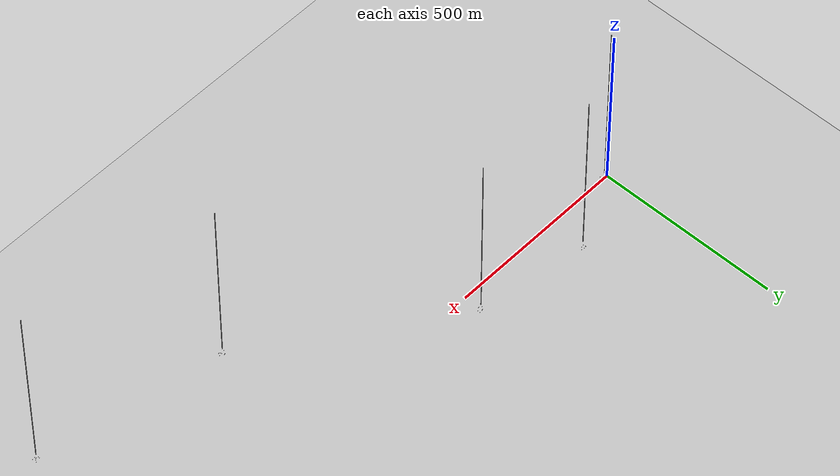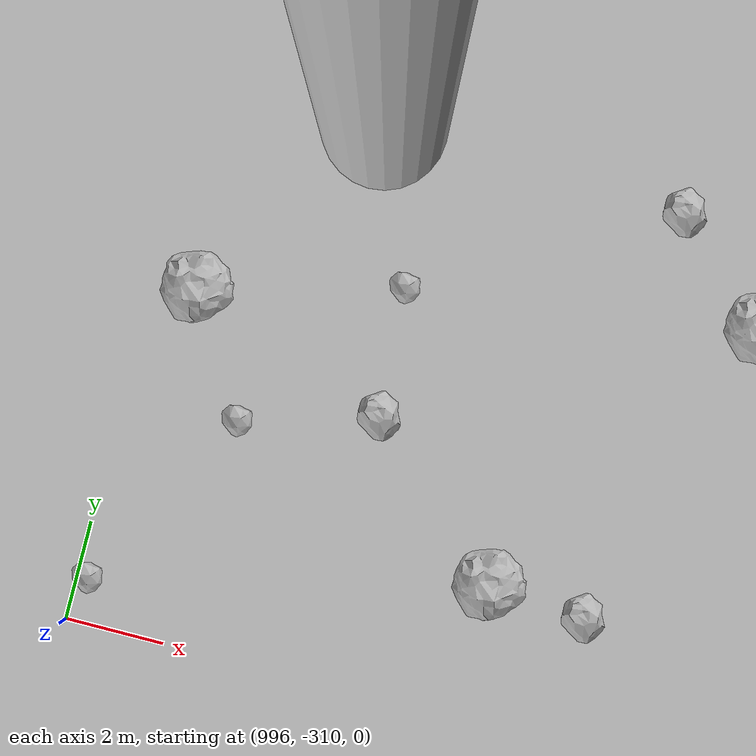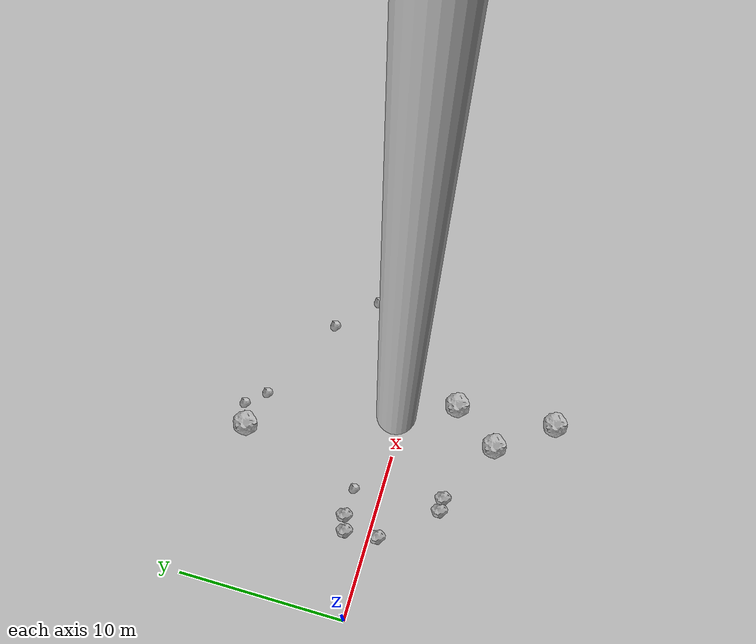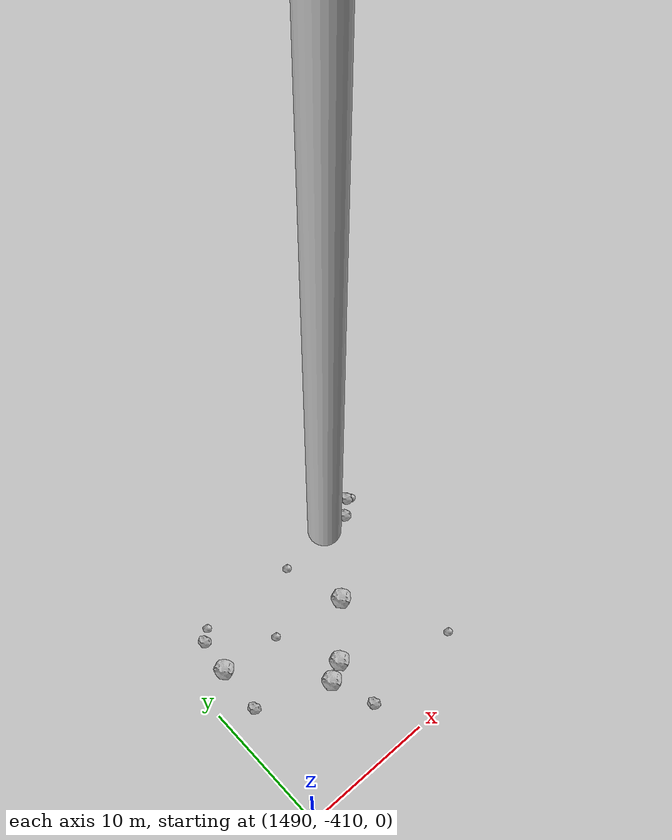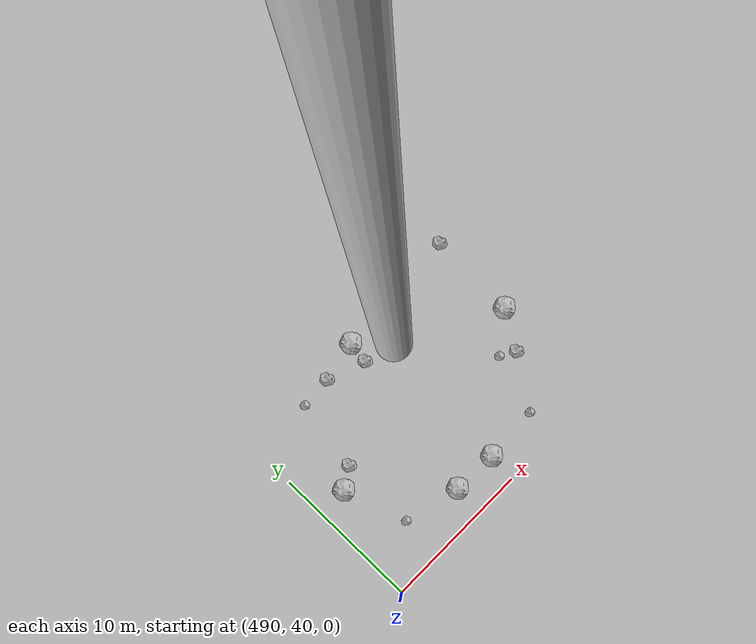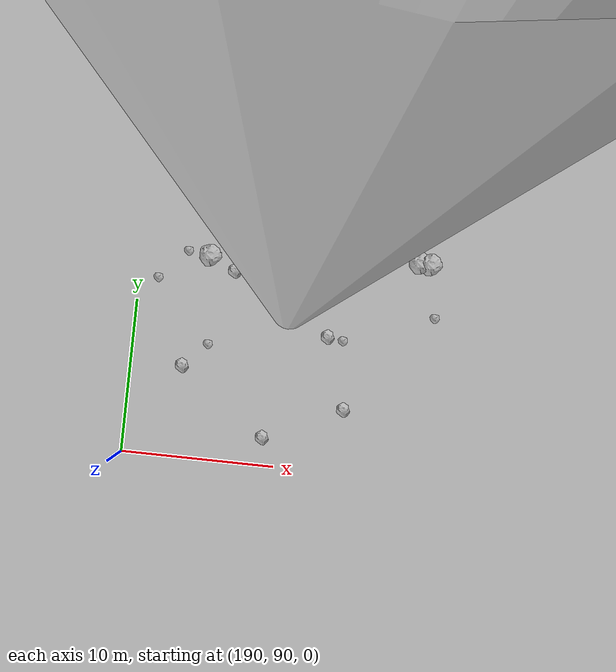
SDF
<?xml version="1.0" ?>
<sdf version="1.6">
  <world name="default">

    <include>
      <uri>model://custom_ground</uri>
    </include>

    <include>
      <uri>model://sun</uri>
    </include>

    <spherical_coordinates>
      <surface_model>EARTH_WGS84</surface_model>
      <latitude_deg>38.161479</latitude_deg>
      <longitude_deg>-122.454630</longitude_deg>
      <elevation>488.0</elevation>
      <heading_deg>90</heading_deg>
    </spherical_coordinates>

    <model name="rock1_0_0">
      <include>
        <uri>model://rock1</uri>
        <pose>14.522142649900724 -8.64368959535694 0.5 0 0 0</pose>
      </include>
    </model>
    <model name="rock1_0_1">
      <include>
        <uri>model://rock1</uri>
        <pose>12.299010159048008 -5.558889774996372 0.5 0 0 0</pose>
      </include>
    </model>
    <model name="rock1_0_2">
      <include>
        <uri>model://rock1</uri>
        <pose>13.668945424347346 0.448006130069194 0.5 0 0 0</pose>
      </include>
    </model>
    <model name="rock1_0_3">
      <include>
        <uri>model://rock1</uri>
        <pose>14.0152120559019 -2.8188596205289818 0.5 0 0 0</pose>
      </include>
    </model>
    <model name="rock1_0_4">
      <include>
        <uri>model://rock1</uri>
        <pose>9.471186729009224 8.829627205848524 0.5 0 0 0</pose>
      </include>
    </model>
    <model name="rock2_0_0">
      <include>
        <uri>model://rock2</uri>
        <pose>7.749408486368427 -3.5255544806947388 0.3 0 0 0</pose>
      </include>
    </model>
    <model name="rock2_0_1">
      <include>
        <uri>model://rock2</uri>
        <pose>5.239809384010989 -0.46641202970233486 0.3 0 0 0</pose>
      </include>
    </model>
    <model name="rock2_0_2">
      <include>
        <uri>model://rock2</uri>
        <pose>5.055476160119261 1.467382575450042 0.3 0 0 0</pose>
      </include>
    </model>
    <model name="rock2_0_3">
      <include>
        <uri>model://rock2</uri>
        <pose>5.934402497399686 1.7352598158985177 0.3 0 0 0</pose>
      </include>
    </model>
    <model name="rock2_0_4">
      <include>
        <uri>model://rock2</uri>
        <pose>8.503548373007874 -3.527987121568823 0.3 0 0 0</pose>
      </include>
    </model>
    <model name="rock3_0_0">
      <include>
        <uri>model://rock3</uri>
        <pose>11.546320942390953 8.104171958799103 0.2 0 0 0</pose>
      </include>
    </model>
    <model name="rock3_0_1">
      <include>
        <uri>model://rock3</uri>
        <pose>16.506400786355787 5.404853643871249 0.2 0 0 0</pose>
      </include>
    </model>
    <model name="rock3_0_2">
      <include>
        <uri>model://rock3</uri>
        <pose>10.60816573155186 9.207994765828008 0.2 0 0 0</pose>
      </include>
    </model>
    <model name="rock3_0_3">
      <include>
        <uri>model://rock3</uri>
        <pose>18.581296522446976 3.317497551975947 0.2 0 0 0</pose>
      </include>
    </model>
    <model name="rock3_0_4">
      <include>
        <uri>model://rock3</uri>
        <pose>7.560962648472332 1.6006187147537823 0.2 0 0 0</pose>
      </include>
    </model>
    <model name="rock1_1_0">
      <include>
        <uri>model://rock1</uri>
        <pose>194.92953282179852 105.46709125765017 0.5 0 0 0</pose>
      </include>
    </model>
    <model name="rock1_1_1">
      <include>
        <uri>model://rock1</uri>
        <pose>208.17073570716252 104.24252141281254 0.5 0 0 0</pose>
      </include>
    </model>
    <model name="rock1_1_2">
      <include>
        <uri>model://rock1</uri>
        <pose>194.5157071182694 103.33565188734848 0.5 0 0 0</pose>
      </include>
    </model>
    <model name="rock1_1_3">
      <include>
        <uri>model://rock1</uri>
        <pose>201.26275420862035 105.85513882981493 0.5 0 0 0</pose>
      </include>
    </model>
    <model name="rock1_1_4">
      <include>
        <uri>model://rock1</uri>
        <pose>208.86996096714262 104.20994223883008 0.5 0 0 0</pose>
      </include>
    </model>
    <model name="rock2_1_0">
      <include>
        <uri>model://rock2</uri>
        <pose>196.19178701492376 102.50530848032417 0.3 0 0 0</pose>
      </include>
    </model>
    <model name="rock2_1_1">
      <include>
        <uri>model://rock2</uri>
        <pose>199.0604973402312 91.86060284987593 0.3 0 0 0</pose>
      </include>
    </model>
    <model name="rock2_1_2">
      <include>
        <uri>model://rock2</uri>
        <pose>193.38130428499676 96.0107808432297 0.3 0 0 0</pose>
      </include>
    </model>
    <model name="rock2_1_3">
      <include>
        <uri>model://rock2</uri>
        <pose>204.15053087128746 94.20397674284868 0.3 0 0 0</pose>
      </include>
    </model>
    <model name="rock2_1_4">
      <include>
        <uri>model://rock2</uri>
        <pose>202.65668229050382 98.83860631017083 0.3 0 0 0</pose>
      </include>
    </model>
    <model name="rock3_1_0">
      <include>
        <uri>model://rock3</uri>
        <pose>191.24846037952443 101.55802919617481 0.2 0 0 0</pose>
      </include>
    </model>
    <model name="rock3_1_1">
      <include>
        <uri>model://rock3</uri>
        <pose>209.46822681025492 100.73517714650534 0.2 0 0 0</pose>
      </include>
    </model>
    <model name="rock3_1_2">
      <include>
        <uri>model://rock3</uri>
        <pose>194.90316258631918 97.54265784951392 0.2 0 0 0</pose>
      </include>
    </model>
    <model name="rock3_1_3">
      <include>
        <uri>model://rock3</uri>
        <pose>203.65352897972858 98.65293532841474 0.2 0 0 0</pose>
      </include>
    </model>
    <model name="rock3_1_4">
      <include>
        <uri>model://rock3</uri>
        <pose>193.04669653378474 103.48421817856578 0.2 0 0 0</pose>
      </include>
    </model>
    <model name="rock1_2_0">
      <include>
        <uri>model://rock1</uri>
        <pose>492.1381608645305 47.160737129645646 0.5 0 0 0</pose>
      </include>
    </model>
    <model name="rock1_2_1">
      <include>
        <uri>model://rock1</uri>
        <pose>507.57218289827347 47.928150048031355 0.5 0 0 0</pose>
      </include>
    </model>
    <model name="rock1_2_2">
      <include>
        <uri>model://rock1</uri>
        <pose>500.22858121543965 41.95140129136536 0.5 0 0 0</pose>
      </include>
    </model>
    <model name="rock1_2_3">
      <include>
        <uri>model://rock1</uri>
        <pose>497.23490370532795 42.0729995851294 0.5 0 0 0</pose>
      </include>
    </model>
    <model name="rock1_2_4">
      <include>
        <uri>model://rock1</uri>
        <pose>499.12432217481484 53.352126743076155 0.5 0 0 0</pose>
      </include>
    </model>
    <model name="rock2_2_0">
      <include>
        <uri>model://rock2</uri>
        <pose>498.9014778800544 51.95770687451025 0.3 0 0 0</pose>
      </include>
    </model>
    <model name="rock2_2_1">
      <include>
        <uri>model://rock2</uri>
        <pose>507.6552800130283 53.81303185838337 0.3 0 0 0</pose>
      </include>
    </model>
    <model name="rock2_2_2">
      <include>
        <uri>model://rock2</uri>
        <pose>496.37913670155905 52.87113149831462 0.3 0 0 0</pose>
      </include>
    </model>
    <model name="rock2_2_3">
      <include>
        <uri>model://rock2</uri>
        <pose>506.08891982047595 45.46851325263463 0.3 0 0 0</pose>
      </include>
    </model>
    <model name="rock2_2_4">
      <include>
        <uri>model://rock2</uri>
        <pose>493.43448534260983 48.048797713203044 0.3 0 0 0</pose>
      </include>
    </model>
    <model name="rock3_2_0">
      <include>
        <uri>model://rock3</uri>
        <pose>503.86687825792336 42.11099635330723 0.2 0 0 0</pose>
      </include>
    </model>
    <model name="rock3_2_1">
      <include>
        <uri>model://rock3</uri>
        <pose>494.19907542376376 52.69350874837276 0.2 0 0 0</pose>
      </include>
    </model>
    <model name="rock3_2_2">
      <include>
        <uri>model://rock3</uri>
        <pose>493.44046092918535 42.9431723911797 0.2 0 0 0</pose>
      </include>
    </model>
    <model name="rock3_2_3">
      <include>
        <uri>model://rock3</uri>
        <pose>498.86581477885136 52.054566106426996 0.2 0 0 0</pose>
      </include>
    </model>
    <model name="rock3_2_4">
      <include>
        <uri>model://rock3</uri>
        <pose>505.1002467565105 45.99762219925845 0.2 0 0 0</pose>
      </include>
    </model>
    <model name="rock1_3_0">
      <include>
        <uri>model://rock1</uri>
        <pose>1007.9782665161318 -300.9109805448727 0.5 0 0 0</pose>
      </include>
    </model>
    <model name="rock1_3_1">
      <include>
        <uri>model://rock1</uri>
        <pose>995.4659292163865 -296.5046379575955 0.5 0 0 0</pose>
      </include>
    </model>
    <model name="rock1_3_2">
      <include>
        <uri>model://rock1</uri>
        <pose>1004.0153682149247 -307.1999886370622 0.5 0 0 0</pose>
      </include>
    </model>
    <model name="rock1_3_3">
      <include>
        <uri>model://rock1</uri>
        <pose>996.9069451579713 -302.9358806097064 0.5 0 0 0</pose>
      </include>
    </model>
    <model name="rock1_3_4">
      <include>
        <uri>model://rock1</uri>
        <pose>991.7166074834182 -304.2923437509508 0.5 0 0 0</pose>
      </include>
    </model>
    <model name="rock2_3_0">
      <include>
        <uri>model://rock2</uri>
        <pose>1001.0471235719629 -304.49862602471336 0.3 0 0 0</pose>
      </include>
    </model>
    <model name="rock2_3_1">
      <include>
        <uri>model://rock2</uri>
        <pose>1005.9896704645018 -307.37731601813664 0.3 0 0 0</pose>
      </include>
    </model>
    <model name="rock2_3_2">
      <include>
        <uri>model://rock2</uri>
        <pose>996.5585191737598 -295.1506141366117 0.3 0 0 0</pose>
      </include>
    </model>
    <model name="rock2_3_3">
      <include>
        <uri>model://rock2</uri>
        <pose>1005.9278025004666 -299.0521944788286 0.3 0 0 0</pose>
      </include>
    </model>
    <model name="rock2_3_4">
      <include>
        <uri>model://rock2</uri>
        <pose>998.6302415952908 -295.5442256653093 0.3 0 0 0</pose>
      </include>
    </model>
    <model name="rock3_3_0">
      <include>
        <uri>model://rock3</uri>
        <pose>1000.8797497355317 -301.9170190201249 0.2 0 0 0</pose>
      </include>
    </model>
    <model name="rock3_3_1">
      <include>
        <uri>model://rock3</uri>
        <pose>990.3356984075945 -302.17523775806416 0.2 0 0 0</pose>
      </include>
    </model>
    <model name="rock3_3_2">
      <include>
        <uri>model://rock3</uri>
        <pose>996.1948897605823 -309.1004754104074 0.2 0 0 0</pose>
      </include>
    </model>
    <model name="rock3_3_3">
      <include>
        <uri>model://rock3</uri>
        <pose>999.4420586702832 -293.68435740340385 0.2 0 0 0</pose>
      </include>
    </model>
    <model name="rock3_3_4">
      <include>
        <uri>model://rock3</uri>
        <pose>998.3031168664398 -305.32366197368856 0.2 0 0 0</pose>
      </include>
    </model>
    <model name="rock1_4_0">
      <include>
        <uri>model://rock1</uri>
        <pose>1505.7568745895064 -394.25439387246894 0.5 0 0 0</pose>
      </include>
    </model>
    <model name="rock1_4_1">
      <include>
        <uri>model://rock1</uri>
        <pose>1492.472122131025 -397.75453340817137 0.5 0 0 0</pose>
      </include>
    </model>
    <model name="rock1_4_2">
      <include>
        <uri>model://rock1</uri>
        <pose>1502.2011517448057 -399.3593058892113 0.5 0 0 0</pose>
      </include>
    </model>
    <model name="rock1_4_3">
      <include>
        <uri>model://rock1</uri>
        <pose>1497.6369352697898 -403.45525534096737 0.5 0 0 0</pose>
      </include>
    </model>
    <model name="rock1_4_4">
      <include>
        <uri>model://rock1</uri>
        <pose>1499.0100779642673 -402.7291271788637 0.5 0 0 0</pose>
      </include>
    </model>
    <model name="rock2_4_0">
      <include>
        <uri>model://rock2</uri>
        <pose>1507.6936776447928 -393.78992726975184 0.3 0 0 0</pose>
      </include>
    </model>
    <model name="rock2_4_1">
      <include>
        <uri>model://rock2</uri>
        <pose>1492.7512748992742 -395.20120881744907 0.3 0 0 0</pose>
      </include>
    </model>
    <model name="rock2_4_2">
      <include>
        <uri>model://rock2</uri>
        <pose>1492.2171028203084 -401.2373678544645 0.3 0 0 0</pose>
      </include>
    </model>
    <model name="rock2_4_3">
      <include>
        <uri>model://rock2</uri>
        <pose>1506.7097754652525 -394.69549312641925 0.3 0 0 0</pose>
      </include>
    </model>
    <model name="rock2_4_4">
      <include>
        <uri>model://rock2</uri>
        <pose>1498.7512083086972 -406.60842110608235 0.3 0 0 0</pose>
      </include>
    </model>
    <model name="rock3_4_0">
      <include>
        <uri>model://rock3</uri>
        <pose>1507.967157241482 -394.0161768595343 0.2 0 0 0</pose>
      </include>
    </model>
    <model name="rock3_4_1">
      <include>
        <uri>model://rock3</uri>
        <pose>1496.7959737656151 -398.34880113315074 0.2 0 0 0</pose>
      </include>
    </model>
    <model name="rock3_4_2">
      <include>
        <uri>model://rock3</uri>
        <pose>1493.5235626022766 -394.58667176587704 0.2 0 0 0</pose>
      </include>
    </model>
    <model name="rock3_4_3">
      <include>
        <uri>model://rock3</uri>
        <pose>1500.797673967126 -394.99588686411704 0.2 0 0 0</pose>
      </include>
    </model>
    <model name="rock3_4_4">
      <include>
        <uri>model://rock3</uri>
        <pose>1506.2523076606965 -406.300503155604 0.2 0 0 0</pose>
      </include>
    </model>

    <model name="cylinder_1">
      <static>true</static>
      <link name="link">
        <visual name="visual">
          <geometry>
            <cylinder>
              <radius>1</radius>
              <length>500</length>
            </cylinder>
          </geometry>
        </visual>
      </link>
      <pose>10 0 270 0 0 0</pose>
    </model>

    <model name="cylinder_2">
      <static>true</static>
      <link name="link">
        <visual name="visual">
          <geometry>
            <cylinder>
              <radius>1</radius>
              <length>500</length>
            </cylinder>
          </geometry>
        </visual>
      </link>
      <pose>200 100 270 0 0 0</pose>
    </model>

    <model name="cylinder_3">
      <static>true</static>
      <link name="link">
        <visual name="visual">
          <geometry>
            <cylinder>
              <radius>1</radius>
              <length>500</length>
            </cylinder>
          </geometry>
        </visual>
      </link>
      <pose>500 50 270 0 0 0</pose>
    </model>

    <model name="cylinder_4">
      <static>true</static>
      <link name="link">
        <visual name="visual">
          <geometry>
            <cylinder>
              <radius>1</radius>
              <length>500</length>
            </cylinder>
          </geometry>
        </visual>
      </link>
      <pose>1000 -300 270 0 0 0</pose>
    </model>

    <model name="cylinder_5">
      <static>true</static>
      <link name="link">
        <visual name="visual">
          <geometry>
            <cylinder>
              <radius>1</radius>
              <length>500</length>
            </cylinder>
          </geometry>
        </visual>
      </link>
      <pose>1500 -400 270 0 0 0</pose>
    </model>

  </world>
</sdf>

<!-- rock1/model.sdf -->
<sdf version="1.6">
  <model name="rock1">
    <static>true</static> <!-- Set to true if the model should not move -->
    <pose>0 0 0 0 0 0</pose>

    <!--z offset is 0.5 for full scale-->

    <link name="link">
      <collision name="rock1_collision">
        <geometry>
          <mesh>
            <uri>model://meshes/rock1.dae</uri>
          </mesh>
        </geometry>
      </collision>
      <visual name="rock1_visual">
        <geometry>
          <mesh>
            <uri>model://meshes/rock1.dae</uri>
          </mesh>
        </geometry>
        <material>
          <script>
            <uri>model://materials/scripts/sand_pebbles.material</uri>
            <name>custom_ground/Image</name>
          </script>
        </material>
      </visual>
    </link>
  </model>
</sdf>

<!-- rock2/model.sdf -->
<sdf version="1.6">
  <model name="rock2">
    <static>true</static> <!-- Set to true if the model should not move -->
    <pose>0 0 0 0 0 0</pose>

    <!--z offset is 0.3 for full scale-->

    <link name="link">
      <collision name="rock2_collision">
        <geometry>
          <mesh>
            <uri>model://meshes/rock2.dae</uri>
          </mesh>
        </geometry>
      </collision>
      <visual name="rock2_visual">
        <geometry>
          <mesh>
            <uri>model://meshes/rock2.dae</uri>
          </mesh>
        </geometry>
        <material>
          <script>
            <uri>model://materials/scripts/sand_pebbles.material</uri>
            <name>custom_ground/Image</name>
          </script>
        </material>
      </visual>
    </link>
  </model>
</sdf>

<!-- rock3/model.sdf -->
<sdf version="1.6">
  <model name="rock3">
    <static>true</static> <!-- Set to true if the model should not move -->
    <pose>0 0 0 0 0 0</pose>

    <!--z offset is 0.2 for full scale-->

    <link name="link">
      <collision name="rock3_collision">
        <geometry>
          <mesh>
            <uri>model://meshes/rock3.dae</uri>
          </mesh>
        </geometry>
      </collision>
      <visual name="rock3_visual">
        <geometry>
          <mesh>
            <uri>model://meshes/rock3.dae</uri>
          </mesh>
        </geometry>
        <material>
          <script>
            <uri>model://materials/scripts/sand_pebbles.material</uri>
            <name>custom_ground/Image</name>
          </script>
        </material>
      </visual>
    </link>
  </model>
</sdf>

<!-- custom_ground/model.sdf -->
<sdf version="1.6">
  <model name="custom_ground">
    <static>true</static> <!-- Ground is static and immovable -->
    <link name="ground_link">
      <pose>240 0 0 0 0 0</pose> <!-- Position and orientation relative to the world -->
      <!-- Visual Representation -->
      <visual name="ground_visual">
        <geometry>
          <plane>
            <normal>0 0 1</normal> <!-- Upward facing plane -->
            <size>500 500</size> <!-- Size of the plane -->
          </plane>
        </geometry>
        <material>
          <script>
            <uri>model://materials/scripts/sand_pebbles.material</uri>
            <name>custom_ground/Image</name>
          </script>
        </material>
      </visual>

      <!-- Collision Representation -->
      <collision name="ground_collision">
        <geometry>
          <plane>
            <normal>0 0 1</normal>
            <size>100 100</size>
          </plane>
        </geometry>
      </collision>

    </link>
  </model>
</sdf>
